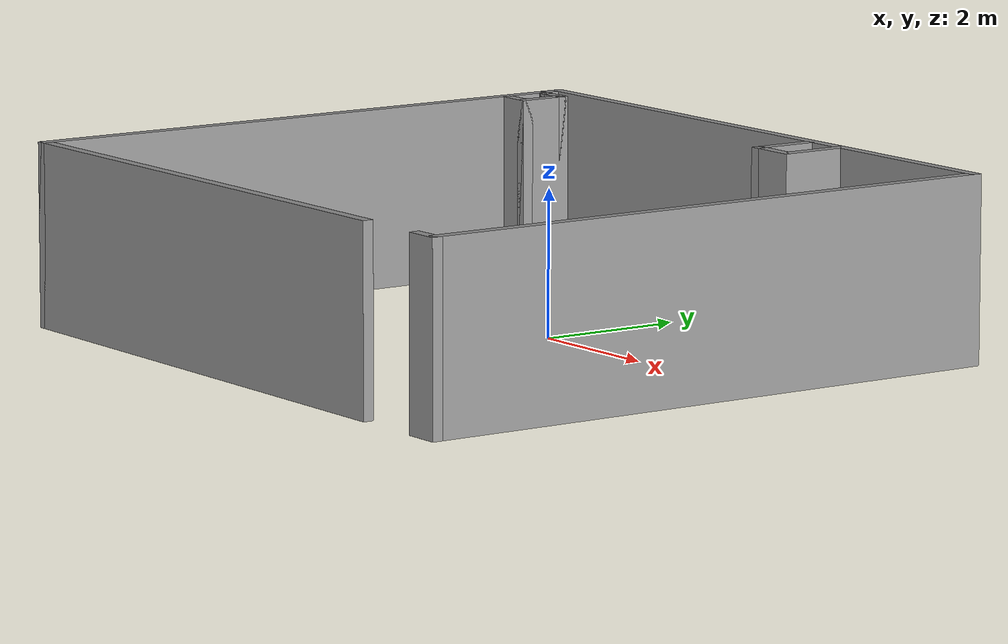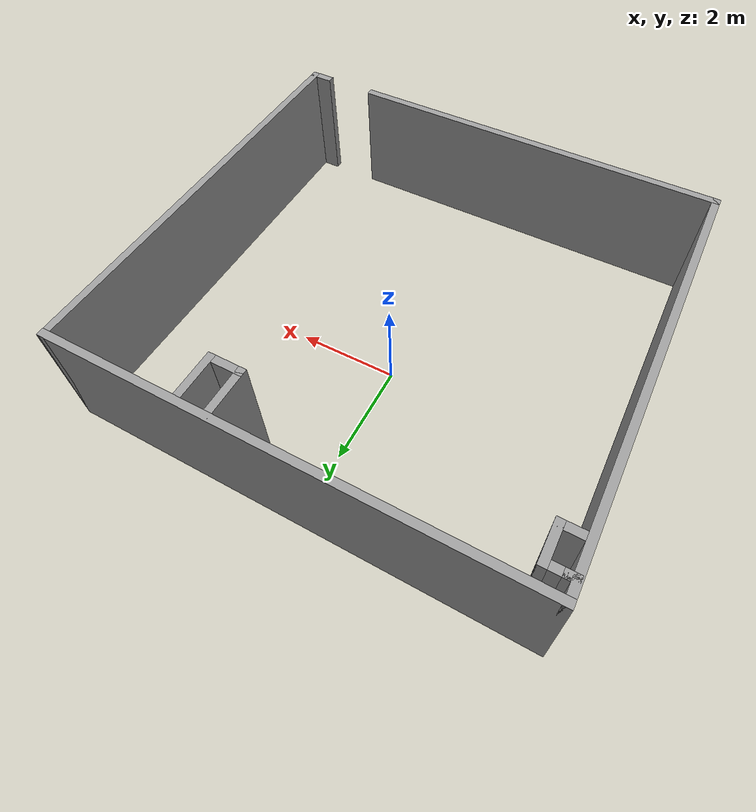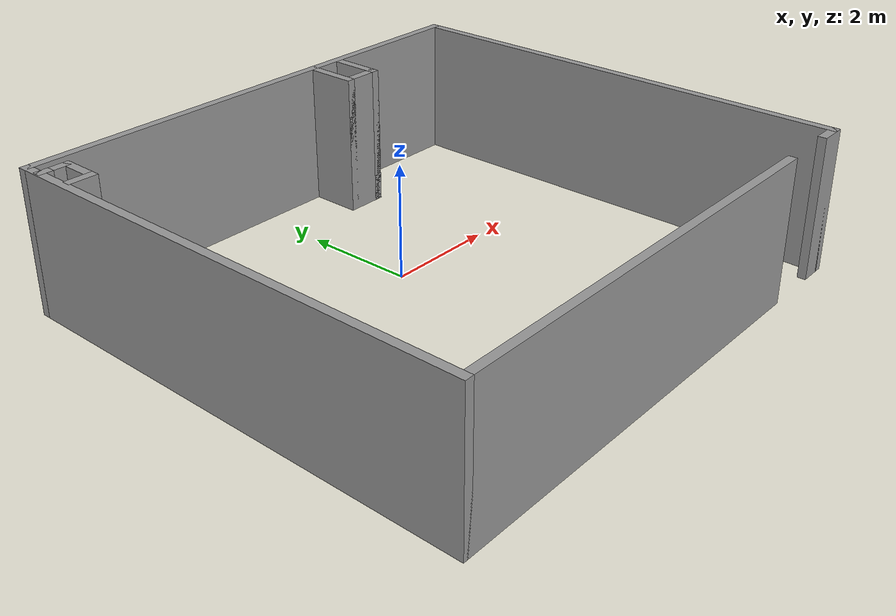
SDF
<?xml version='1.0'?>
<sdf version='1.6'>
  <model name='sk_building_floor_plan'>
    <pose frame=''>0.109217 -0.83555 0 0 -0 0</pose>
    <link name='Wall_0'>
      <collision name='Wall_0_Collision'>
        <geometry>
          <box>
            <size>9.25 0.15 2.5</size>
          </box>
        </geometry>
        <pose frame=''>0 0 1.25 0 -0 0</pose>
      </collision>
      <visual name='Wall_0_Visual'>
        <pose frame=''>0 0 1.25 0 -0 0</pose>
        <geometry>
          <box>
            <size>9.25 0.15 2.5</size>
          </box>
        </geometry>
        <material>
          <script>
            <uri>file://media/materials/scripts/gazebo.material</uri>
            <name>Gazebo/Grey</name>
          </script>
          <ambient>1 1 1 1</ambient>
        </material>
        <meta>
          <layer>0</layer>
        </meta>
      </visual>
      <pose frame=''>0 4.175 0 0 -0 0</pose>
    </link>
    <link name='Wall_1'>
      <collision name='Wall_1_Collision'>
        <geometry>
          <box>
            <size>8.5 0.15 2.5</size>
          </box>
        </geometry>
        <pose frame=''>0 0 1.25 0 -0 0</pose>
      </collision>
      <visual name='Wall_1_Visual'>
        <pose frame=''>0 0 1.25 0 -0 0</pose>
        <geometry>
          <box>
            <size>8.5 0.15 2.5</size>
          </box>
        </geometry>
        <material>
          <script>
            <uri>file://media/materials/scripts/gazebo.material</uri>
            <name>Gazebo/Grey</name>
          </script>
          <ambient>1 1 1 1</ambient>
        </material>
        <meta>
          <layer>0</layer>
        </meta>
      </visual>
      <pose frame=''>4.55 0 0 0 -0 -1.5708</pose>
    </link>
    <link name='Wall_12'>
      <collision name='Wall_12_Collision'>
        <geometry>
          <box>
            <size>1 0.15 2.5</size>
          </box>
        </geometry>
        <pose frame=''>0 0 1.25 0 -0 0</pose>
      </collision>
      <visual name='Wall_12_Visual'>
        <pose frame=''>0 0 1.25 0 -0 0</pose>
        <geometry>
          <box>
            <size>1 0.15 2.5</size>
          </box>
        </geometry>
        <material>
          <script>
            <uri>file://media/materials/scripts/gazebo.material</uri>
            <name>Gazebo/Grey</name>
          </script>
          <ambient>1 1 1 1</ambient>
        </material>
        <meta>
          <layer>0</layer>
        </meta>
      </visual>
      <pose frame=''>1.23265 3.70374 0 0 -0 -1.5708</pose>
    </link>
    <link name='Wall_13'>
      <collision name='Wall_13_Collision'>
        <geometry>
          <box>
            <size>0.75 0.15 2.5</size>
          </box>
        </geometry>
        <pose frame=''>0 0 1.25 0 -0 0</pose>
      </collision>
      <visual name='Wall_13_Visual'>
        <pose frame=''>0 0 1.25 0 -0 0</pose>
        <geometry>
          <box>
            <size>0.75 0.15 2.5</size>
          </box>
        </geometry>
        <material>
          <script>
            <uri>file://media/materials/scripts/gazebo.material</uri>
            <name>Gazebo/Grey</name>
          </script>
          <ambient>1 1 1 1</ambient>
        </material>
        <meta>
          <layer>0</layer>
        </meta>
      </visual>
      <pose frame=''>1.53265 3.27874 0 0 -0 0</pose>
    </link>
    <link name='Wall_14'>
      <collision name='Wall_14_Collision'>
        <geometry>
          <box>
            <size>1 0.15 2.5</size>
          </box>
        </geometry>
        <pose frame=''>0 0 1.25 0 -0 0</pose>
      </collision>
      <visual name='Wall_14_Visual'>
        <pose frame=''>0 0 1.25 0 -0 0</pose>
        <geometry>
          <box>
            <size>1 0.15 2.5</size>
          </box>
        </geometry>
        <material>
          <script>
            <uri>file://media/materials/scripts/gazebo.material</uri>
            <name>Gazebo/Grey</name>
          </script>
          <ambient>1 1 1 1</ambient>
        </material>
        <meta>
          <layer>0</layer>
        </meta>
      </visual>
      <pose frame=''>1.83265 3.70374 0 0 -0 1.5708</pose>
    </link>
    <link name='Wall_16'>
      <collision name='Wall_16_Collision'>
        <geometry>
          <box>
            <size>0.25 0.15 2.5</size>
          </box>
        </geometry>
        <pose frame=''>0 0 1.25 0 -0 0</pose>
      </collision>
      <visual name='Wall_16_Visual'>
        <pose frame=''>0 0 1.25 0 -0 0</pose>
        <geometry>
          <box>
            <size>0.25 0.15 2.5</size>
          </box>
        </geometry>
        <material>
          <script>
            <uri>file://media/materials/scripts/gazebo.material</uri>
            <name>Gazebo/Grey</name>
          </script>
          <ambient>1 1 1 1</ambient>
        </material>
        <meta>
          <layer>0</layer>
        </meta>
      </visual>
      <pose frame=''>-4.47687 3.85117 0 0 -0 0</pose>
    </link>
    <link name='Wall_17'>
      <collision name='Wall_17_Collision'>
        <geometry>
          <box>
            <size>0.25 0.15 2.5</size>
          </box>
        </geometry>
        <pose frame=''>0 0 1.25 0 -0 0</pose>
      </collision>
      <visual name='Wall_17_Visual'>
        <pose frame=''>0 0 1.25 0 -0 0</pose>
        <geometry>
          <box>
            <size>0.25 0.15 2.5</size>
          </box>
        </geometry>
        <material>
          <script>
            <uri>file://media/materials/scripts/gazebo.material</uri>
            <name>Gazebo/Grey</name>
          </script>
          <ambient>1 1 1 1</ambient>
        </material>
        <meta>
          <layer>0</layer>
        </meta>
      </visual>
      <pose frame=''>-4.47687 3.85117 0 0 -0 3.14159</pose>
    </link>
    <link name='Wall_2'>
      <collision name='Wall_2_Collision'>
        <geometry>
          <box>
            <size>0.5 0.15 2.5</size>
          </box>
        </geometry>
        <pose frame=''>0 0 1.25 0 -0 0</pose>
      </collision>
      <visual name='Wall_2_Visual'>
        <pose frame=''>0 0 1.25 0 -0 0</pose>
        <geometry>
          <box>
            <size>0.5 0.15 2.5</size>
          </box>
        </geometry>
        <material>
          <script>
            <uri>file://media/materials/scripts/gazebo.material</uri>
            <name>Gazebo/Grey</name>
          </script>
          <ambient>1 1 1 1</ambient>
        </material>
        <meta>
          <layer>0</layer>
        </meta>
      </visual>
      <pose frame=''>4.375 -4.175 0 0 -0 3.14159</pose>
    </link>
    <link name='Wall_20'>
      <collision name='Wall_20_Collision'>
        <geometry>
          <box>
            <size>0.5 0.15 2.5</size>
          </box>
        </geometry>
        <pose frame=''>0 0 1.25 0 -0 0</pose>
      </collision>
      <visual name='Wall_20_Visual'>
        <pose frame=''>0 0 1.25 0 -0 0</pose>
        <geometry>
          <box>
            <size>0.5 0.15 2.5</size>
          </box>
        </geometry>
        <material>
          <script>
            <uri>file://media/materials/scripts/gazebo.material</uri>
            <name>Gazebo/Grey</name>
          </script>
          <ambient>1 1 1 1</ambient>
        </material>
        <meta>
          <layer>0</layer>
        </meta>
      </visual>
      <pose frame=''>-4.25187 3.85117 0 0 -0 0</pose>
    </link>
    <link name='Wall_21'>
      <collision name='Wall_21_Collision'>
        <geometry>
          <box>
            <size>0.75 0.15 2.5</size>
          </box>
        </geometry>
        <pose frame=''>0 0 1.25 0 -0 0</pose>
      </collision>
      <visual name='Wall_21_Visual'>
        <pose frame=''>0 0 1.25 0 -0 0</pose>
        <geometry>
          <box>
            <size>0.75 0.15 2.5</size>
          </box>
        </geometry>
        <material>
          <script>
            <uri>file://media/materials/scripts/gazebo.material</uri>
            <name>Gazebo/Grey</name>
          </script>
          <ambient>1 1 1 1</ambient>
        </material>
        <meta>
          <layer>0</layer>
        </meta>
      </visual>
      <pose frame=''>-4.07687 3.55117 0 0 -0 -1.5708</pose>
    </link>
    <link name='Wall_22'>
      <collision name='Wall_22_Collision'>
        <geometry>
          <box>
            <size>0.5 0.15 2.5</size>
          </box>
        </geometry>
        <pose frame=''>0 0 1.25 0 -0 0</pose>
      </collision>
      <visual name='Wall_22_Visual'>
        <pose frame=''>0 0 1.25 0 -0 0</pose>
        <geometry>
          <box>
            <size>0.5 0.15 2.5</size>
          </box>
        </geometry>
        <material>
          <script>
            <uri>file://media/materials/scripts/gazebo.material</uri>
            <name>Gazebo/Grey</name>
          </script>
          <ambient>1 1 1 1</ambient>
        </material>
        <meta>
          <layer>0</layer>
        </meta>
      </visual>
      <pose frame=''>-4.25187 3.25117 0 0 -0 3.14159</pose>
    </link>
    <link name='Wall_4'>
      <collision name='Wall_4_Collision'>
        <geometry>
          <box>
            <size>8.5 0.15 2.5</size>
          </box>
        </geometry>
        <pose frame=''>0 0 1.25 0 -0 0</pose>
      </collision>
      <visual name='Wall_4_Visual'>
        <pose frame=''>0 0 1.25 0 -0 0</pose>
        <geometry>
          <box>
            <size>8.5 0.15 2.5</size>
          </box>
        </geometry>
        <material>
          <script>
            <uri>file://media/materials/scripts/gazebo.material</uri>
            <name>Gazebo/Grey</name>
          </script>
          <ambient>1 1 1 1</ambient>
        </material>
        <meta>
          <layer>0</layer>
        </meta>
      </visual>
      <pose frame=''>-4.55 0 0 0 -0 -1.5708</pose>
    </link>
    <link name='Wall_5'>
      <collision name='Wall_5_Collision'>
        <geometry>
          <box>
            <size>7.75 0.15 2.5</size>
          </box>
        </geometry>
        <pose frame=''>0 0 1.25 0 -0 0</pose>
      </collision>
      <visual name='Wall_5_Visual'>
        <pose frame=''>0 0 1.25 0 -0 0</pose>
        <geometry>
          <box>
            <size>7.75 0.15 2.5</size>
          </box>
        </geometry>
        <material>
          <script>
            <uri>file://media/materials/scripts/gazebo.material</uri>
            <name>Gazebo/Grey</name>
          </script>
          <ambient>1 1 1 1</ambient>
        </material>
        <meta>
          <layer>0</layer>
        </meta>
      </visual>
      <pose frame=''>-0.75 -4.175 0 0 -0 0</pose>
    </link>
    <static>1</static>
  </model>
</sdf>
